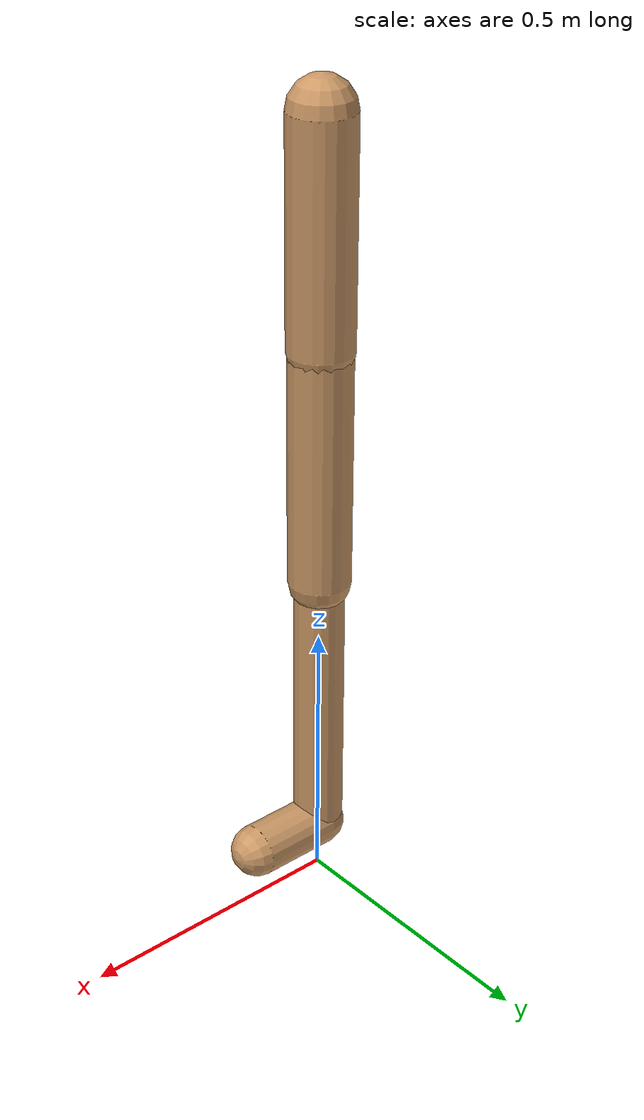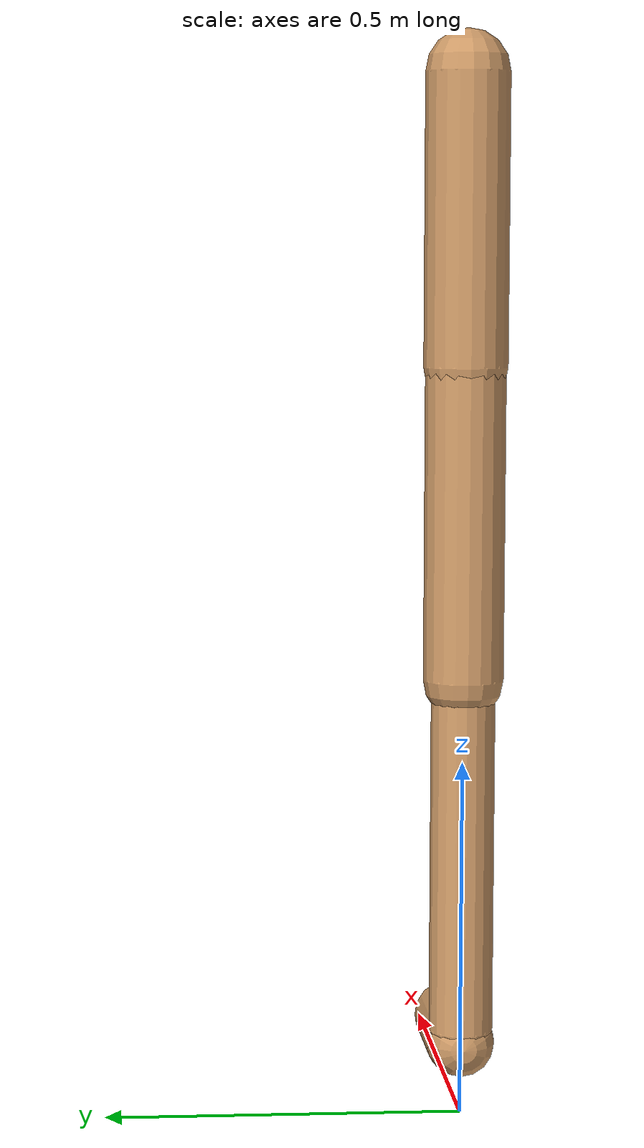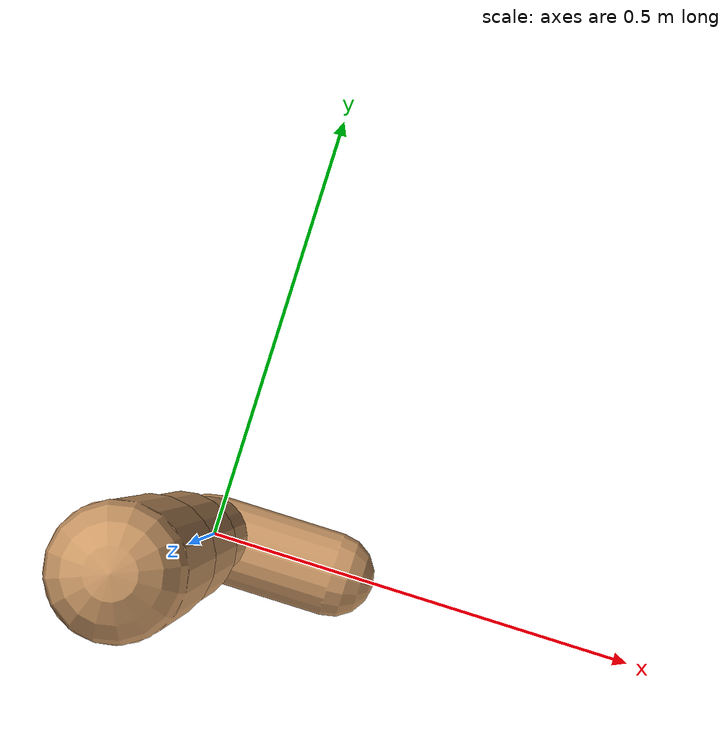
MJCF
<mujoco model="walker2d">
  <compiler angle="degree" coordinate="global" inertiafromgeom="true" />
  <default>
    <joint armature="0.01" damping=".1" limited="true" />
    <geom conaffinity="0" condim="3" contype="1" density="1000" friction="0.8 .1 .1" rgba="0.8 0.6 .4 1" />
  </default>
  <option integrator="RK4" timestep="0.002" />
  <worldbody>

    <body name="torso" pos="0 0 -0.03683085996851037">
      <joint armature="0" axis="1 0 0" damping="0" limited="false" name="ignorex" pos="0 0 0" stiffness="0" type="slide" />
      <joint armature="0" axis="0 0 1" damping="0" limited="false" name="ignorez" pos="0 0 0" ref="1.25" stiffness="0" type="slide" />
      <joint armature="0" axis="0 1 0" damping="0" limited="false" name="ignorey" pos="0 0 0" stiffness="0" type="hinge" />
      <geom fromto="0 0 1.45 0 0 1.05" name="torso_geom" size="0.05834741467218845" type="capsule" />
      <body name="thigh">
        <joint axis="0 -1 0" name="thigh_joint" pos="0 0 1.05" range="-150 0" type="hinge" />
        <geom fromto="0.0 0.0 1.05 0.0 0.0 0.6174461968271892" name="thigh_geom" size="0.05596572162671622" type="capsule" />
        <body name="leg" pos="0.0 0.0 0.017446196827189175">
          <joint axis="0 -1 0" name="leg_joint" pos="0 0 0.6" range="-150 0" type="hinge" />
          <geom fromto="0.0 0.0 0.6 0.0 0.0 0.11938466314132125" name="leg_geom" size="0.04477257730137297" type="capsule" />
          <body name="foot" pos="0.0 0.0 0.019384663141321243">
            <joint axis="0 -1 0" name="foot_joint" pos="0 0 0.1" range="-45 45" type="hinge" />
            <geom fromto="0.0 0.0 0.1 0.14556903553758876 0.0 0.1" name="foot_geom" size="0.047804282291272156" type="capsule" />
          </body>
        </body>
      </body>

      <body name="thigh_left">
        <joint axis="0 -1 0" name="thigh_left_joint" pos="0 0 1.05" range="-150 0" type="hinge" />
        <geom fromto="0.0 0.0 1.05 0.0 0.0 0.6174461968271892" name="thigh_left_geom" rgba=".7 .3 .6 1" size="0.05596572162671622" type="capsule" />
        <body name="leg_left" pos="0.0 0.0 0.017446196827189175">
          <joint axis="0 -1 0" name="leg_left_joint" pos="0 0 0.6" range="-150 0" type="hinge" />
          <geom fromto="0.0 0.0 0.6 0.0 0.0 0.11938466314132125" name="leg_left_geom" rgba=".7 .3 .6 1" size="0.04477257730137297" type="capsule" />
          <body name="foot_left" pos="0.0 0.0 0.019384663141321243">
            <joint axis="0 -1 0" name="foot_left_joint" pos="0 0 0.1" range="-45 45" type="hinge" />
            <geom fromto="0.0 0.0 0.1 0.14556903553758876 0.0 0.1" name="foot_left_geom" rgba=".7 .3 .6 1" size="0.047804282291272156" type="capsule" />
          </body>
        </body>
      </body>
    </body>
  </worldbody>
  <actuator>

    <motor ctrllimited="true" ctrlrange="-1.0 1.0" gear="100" joint="thigh_joint" />
    <motor ctrllimited="true" ctrlrange="-1.0 1.0" gear="100" joint="leg_joint" />
    <motor ctrllimited="true" ctrlrange="-1.0 1.0" gear="100" joint="foot_joint" />
    <motor ctrllimited="true" ctrlrange="-1.0 1.0" gear="100" joint="thigh_left_joint" />
    <motor ctrllimited="true" ctrlrange="-1.0 1.0" gear="100" joint="leg_left_joint" />
    <motor ctrllimited="true" ctrlrange="-1.0 1.0" gear="100" joint="foot_left_joint" />

  </actuator>
</mujoco>
